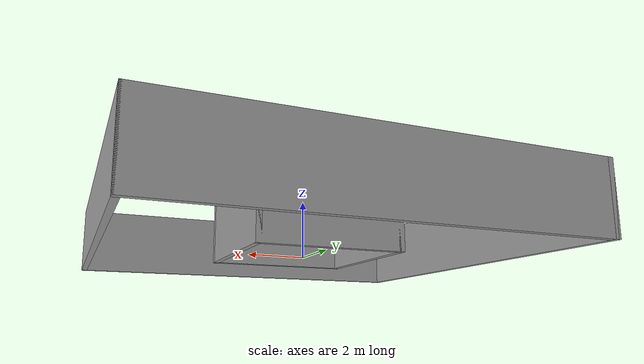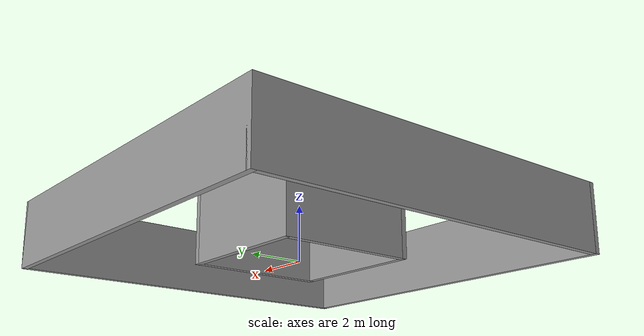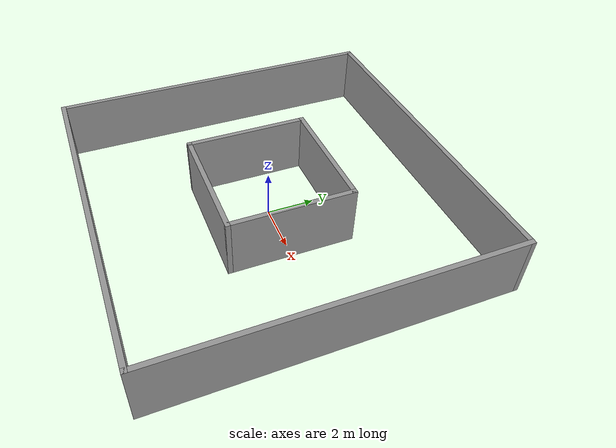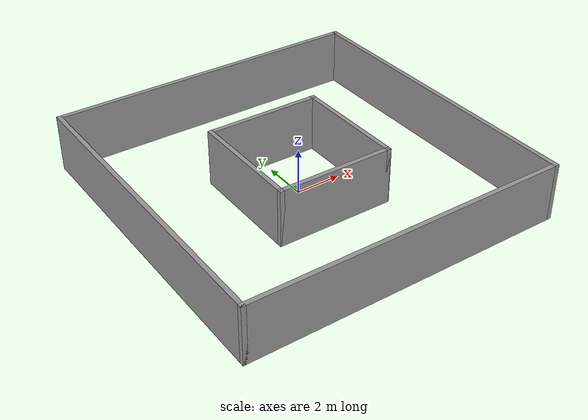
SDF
<?xml version='1.0'?>
<sdf version='1.4'>
  <model name='training_area_sm'>
    <link name='Wall_55'>
      <collision name='Wall_55_Collision'>
        <geometry>
          <box>
            <size>14.2 0.2 2.5</size>
          </box>
        </geometry>
        <pose>0 0 1.25 0 -0 0</pose>
      </collision>
      <visual name='Wall_55_Visual'>
        <pose>0 0 1.25 0 -0 0</pose>
        <geometry>
          <box>
            <size>14.2 0.2 2.5</size>
          </box>
        </geometry>
        <material>
          <script>
            <uri>file://media/materials/scripts/gazebo.material</uri>
            <name>Gazebo/Grey</name>
          </script>
        </material>
      </visual>
      <velocity_decay>
        <linear>0</linear>
        <angular>0</angular>
      </velocity_decay>
      <pose>0 7 0 0 -0 0</pose>
    </link>
    <link name='Wall_57'>
      <collision name='Wall_57_Collision'>
        <geometry>
          <box>
            <size>14.2 0.2 2.5</size>
          </box>
        </geometry>
        <pose>0 0 1.25 0 -0 0</pose>
      </collision>
      <visual name='Wall_57_Visual'>
        <pose>0 0 1.25 0 -0 0</pose>
        <geometry>
          <box>
            <size>14.2 0.2 2.5</size>
          </box>
        </geometry>
        <material>
          <script>
            <uri>file://media/materials/scripts/gazebo.material</uri>
            <name>Gazebo/Grey</name>
          </script>
        </material>
      </visual>
      <velocity_decay>
        <linear>0</linear>
        <angular>0</angular>
      </velocity_decay>
      <pose>0 -7 0 0 -0 0</pose>
    </link>
    <link name='Wall_59'>
      <collision name='Wall_59_Collision'>
        <geometry>
          <box>
            <size>14.2 0.2 2.5</size>
          </box>
        </geometry>
        <pose>0 0 1.25 0 -0 0</pose>
      </collision>
      <visual name='Wall_59_Visual'>
        <pose>0 0 1.25 0 -0 0</pose>
        <geometry>
          <box>
            <size>14.2 0.2 2.5</size>
          </box>
        </geometry>
        <material>
          <script>
            <uri>file://media/materials/scripts/gazebo.material</uri>
            <name>Gazebo/Grey</name>
          </script>
        </material>
      </visual>
      <velocity_decay>
        <linear>0</linear>
        <angular>0</angular>
      </velocity_decay>
      <pose>-7 0 0 0 -0 1.5708</pose>
    </link>
    <link name='Wall_61'>
      <collision name='Wall_61_Collision'>
        <geometry>
          <box>
            <size>14.2 0.2 2.5</size>
          </box>
        </geometry>
        <pose>0 0 1.25 0 -0 0</pose>
      </collision>
      <visual name='Wall_61_Visual'>
        <pose>0 0 1.25 0 -0 0</pose>
        <geometry>
          <box>
            <size>14.2 0.2 2.5</size>
          </box>
        </geometry>
        <material>
          <script>
            <uri>file://media/materials/scripts/gazebo.material</uri>
            <name>Gazebo/Grey</name>
          </script>
        </material>
      </visual>
      <velocity_decay>
        <linear>0</linear>
        <angular>0</angular>
      </velocity_decay>
      <pose>7 0 0 0 -0 1.5708</pose>
    </link>
    <link name='Wall_74'>
      <collision name='Wall_74_Collision'>
        <geometry>
          <box>
            <size>5.2 0.2 2.5</size>
          </box>
        </geometry>
        <pose>0 0 1.25 0 -0 0</pose>
      </collision>
      <visual name='Wall_74_Visual'>
        <pose>0 0 1.25 0 -0 0</pose>
        <geometry>
          <box>
            <size>5.2 0.2 2.5</size>
          </box>
        </geometry>
        <material>
          <script>
            <uri>file://media/materials/scripts/gazebo.material</uri>
            <name>Gazebo/Grey</name>
          </script>
        </material>
      </visual>
      <velocity_decay>
        <linear>0</linear>
        <angular>0</angular>
      </velocity_decay>
      <pose>-2.5 0 0 0 -0 1.5708</pose>
    </link>
    <link name='Wall_76'>
      <collision name='Wall_76_Collision'>
        <geometry>
          <box>
            <size>5.2 0.2 2.5</size>
          </box>
        </geometry>
        <pose>0 0 1.25 0 -0 0</pose>
      </collision>
      <visual name='Wall_76_Visual'>
        <pose>0 0 1.25 0 -0 0</pose>
        <geometry>
          <box>
            <size>5.2 0.2 2.5</size>
          </box>
        </geometry>
        <material>
          <script>
            <uri>file://media/materials/scripts/gazebo.material</uri>
            <name>Gazebo/Grey</name>
          </script>
        </material>
      </visual>
      <velocity_decay>
        <linear>0</linear>
        <angular>0</angular>
      </velocity_decay>
      <pose>0 2.5 0 0 -0 0</pose>
    </link>
    <link name='Wall_78'>
      <collision name='Wall_78_Collision'>
        <geometry>
          <box>
            <size>5.2 0.2 2.5</size>
          </box>
        </geometry>
        <pose>0 0 1.25 0 -0 0</pose>
      </collision>
      <visual name='Wall_78_Visual'>
        <pose>0 0 1.25 0 -0 0</pose>
        <geometry>
          <box>
            <size>5.2 0.2 2.5</size>
          </box>
        </geometry>
        <material>
          <script>
            <uri>file://media/materials/scripts/gazebo.material</uri>
            <name>Gazebo/Grey</name>
          </script>
        </material>
      </visual>
      <velocity_decay>
        <linear>0</linear>
        <angular>0</angular>
      </velocity_decay>
      <pose>2.5 0 0 0 0 -1.5708</pose>
    </link>
    <link name='Wall_83'>
      <collision name='Wall_83_Collision'>
        <geometry>
          <box>
            <size>5.2 0.2 2.5</size>
          </box>
        </geometry>
        <pose>0 0 1.25 0 -0 0</pose>
      </collision>
      <visual name='Wall_83_Visual'>
        <pose>0 0 1.25 0 -0 0</pose>
        <geometry>
          <box>
            <size>5.2 0.2 2.5</size>
          </box>
        </geometry>
        <material>
          <script>
            <uri>file://media/materials/scripts/gazebo.material</uri>
            <name>Gazebo/Grey</name>
          </script>
        </material>
      </visual>
      <velocity_decay>
        <linear>0</linear>
        <angular>0</angular>
      </velocity_decay>
      <pose>0 -2.5 0 0 -0 0</pose>
    </link>
    <static>1</static>
  </model>
</sdf>
